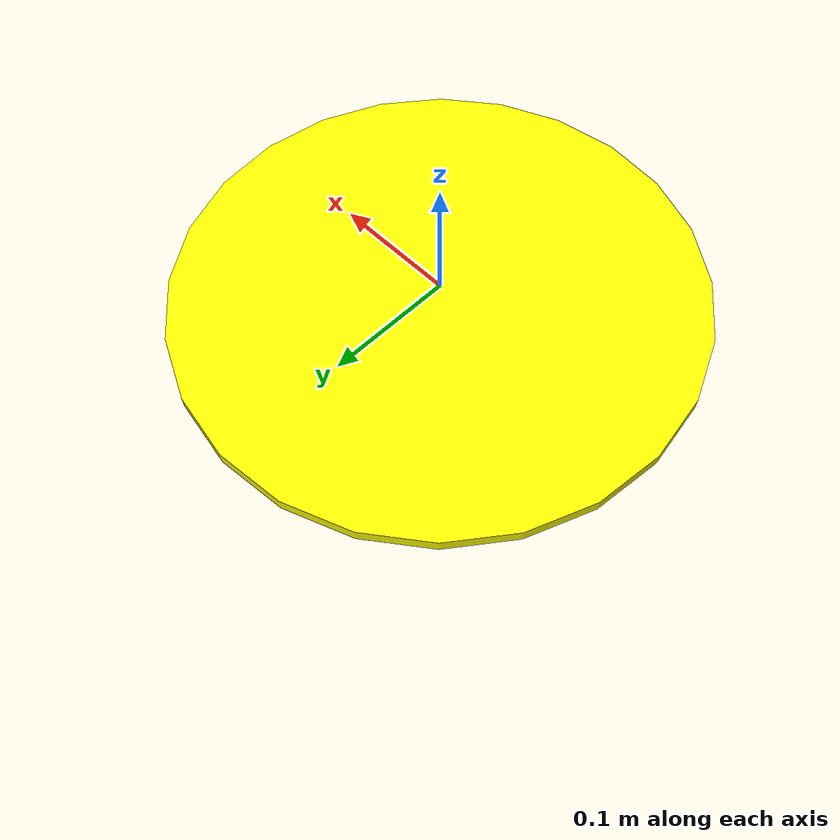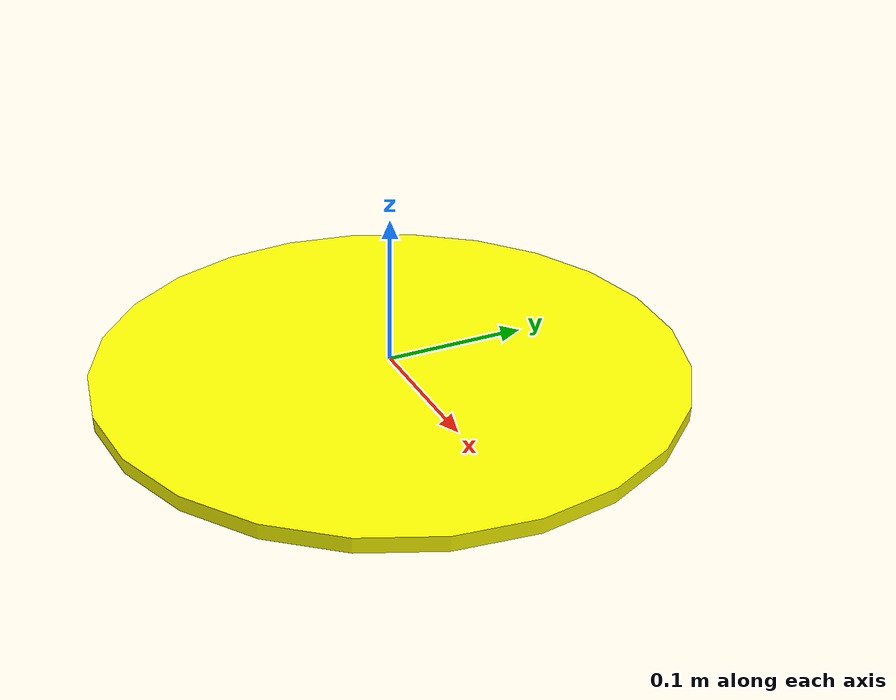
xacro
<?xml version="1.0"?>

<robot xmlns:xacro="http://ros.org/wiki/xacro">

    <xacro:property name="base_link_length" value="0.01" />
    <xacro:property name="base_link_radius" value="0.2" />
    <xacro:macro name="inertial_matrix" params="mass">
               <inertial>
                       <mass value="${mass}" />
                       <inertia ixx="1." ixy="0.0" ixz="0.0"
                                iyy="1." iyz="0.0"
                                izz="1." />
               </inertial>
    </xacro:macro>

  <xacro:macro name="body" params ="" >
    <link name="base_link">
      <visual>
        <geometry>
          <cylinder length="${base_link_length}" radius="${base_link_radius}"/>
        </geometry>
        <origin rpy="0 0 0" xyz="0 0 0"/>
        <material name="yellow">
          <color rgba="1 1 0 1"/>
        </material>
      </visual>
      <collision>
        <geometry>
          <cylinder length="${base_link_length+0.02}" radius="0.2"/>
        </geometry>
        <origin rpy="0 0 0" xyz="0 0 0"/>
      </collision>
      <xacro:inertial_matrix mass="1"/>
    </link>
  </xacro:macro>
  <xacro:body/>
</robot>
